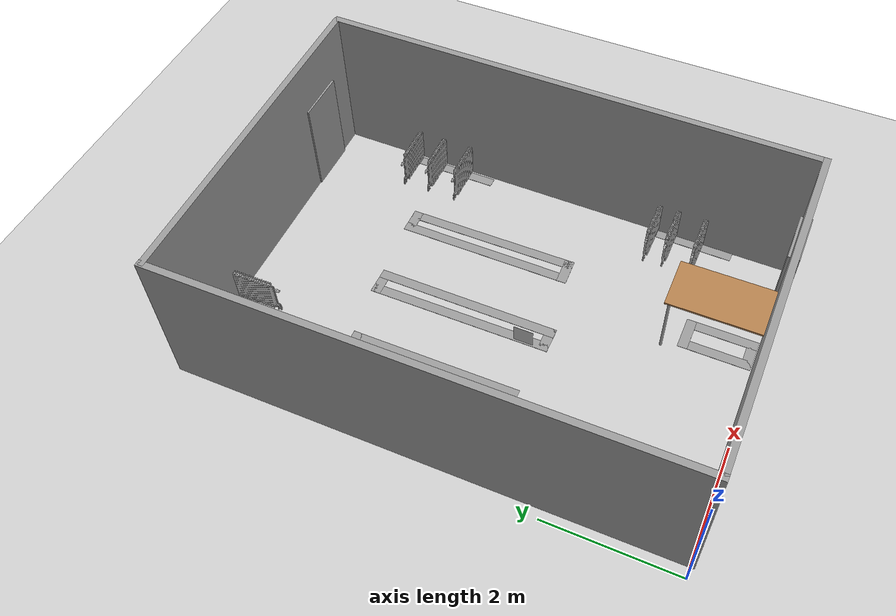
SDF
<sdf version="1.7">
 <world name="default">
  <light name="sun" type="directional">
   <pose>0 0 10 0 -0 0</pose>
   <diffuse>0.8 0.8 0.8 1</diffuse>
   <specular>0.2 0.2 0.2 1</specular>
   <attenuation>
    <range>1000</range>
    <constant>0.9</constant>
    <linear>0.01</linear>
    <quadratic>0.001</quadratic>
   </attenuation>
   <direction>-0.5 0.1 -0.9</direction>
   <spot><inner_angle>0</inner_angle><outer_angle>0</outer_angle><falloff>0</falloff></spot>
  </light>
  <model name="ground_plane">
   <static>1</static>
   <link name="link">
    <collision name="collision">
     <geometry><plane><normal>0 0 1</normal><size>100 100</size></plane></geometry>
     <surface>
      <contact><collide_bitmask>65535</collide_bitmask></contact>
      <friction><ode><mu>100</mu><mu2>50</mu2></ode></friction>
     </surface>
    </collision>
    <visual name="visual">
     <cast_shadows>0</cast_shadows>
     <geometry><plane><normal>0 0 1</normal><size>100 100</size></plane></geometry>
     <material>
      <script><uri>file://media/materials/scripts/gazebo.material</uri><name>Gazebo/Grey</name></script>
     </material>
    </visual>
   </link>
  </model>
  <gravity>0 0 -9.8</gravity>
  <magnetic_field>6e-06 2.3e-05 -4.2e-05</magnetic_field>
  <atmosphere type="adiabatic"/>
  <physics type="ode">
   <max_step_size>0.001</max_step_size>
   <real_time_factor>1</real_time_factor>
   <real_time_update_rate>1000</real_time_update_rate>
  </physics>
  <scene><ambient>0.4 0.4 0.4 1</ambient><background>0.7 0.7 0.7 1</background><shadows>1</shadows></scene>
  <spherical_coordinates>
   <surface_model>EARTH_WGS84</surface_model>
   <latitude_deg>0</latitude_deg>
   <longitude_deg>0</longitude_deg>
   <elevation>0</elevation>
   <heading_deg>0</heading_deg>
  </spherical_coordinates>
  <model name="csl_lab_accurate">
   <pose>2.7656 3.78855 -0.103472 0 -0 0</pose>
   <link name="Wall_1">
    <collision name="Wall_1_Collision">
     <geometry><box><size>5.25533 0.1 2.5</size></box></geometry>
     <pose>0 0 1.25 0 -0 0</pose>
    </collision>
    <visual name="Wall_1_Visual">
     <pose>0 0 1.25 0 -0 0</pose>
     <geometry><box><size>5.25533 0.1 2.5</size></box></geometry>
     <material>
      <script><uri>file://media/materials/scripts/gazebo.material</uri><name>Gazebo/Grey</name></script>
      <ambient>1 1 1 1</ambient>
     </material>
     <meta><layer>0</layer></meta>
    </visual>
    <pose>-0.003381 3.76591 0 0 -0 0.010281</pose>
   </link>
   <link name="Wall_10">
    <collision name="Wall_10_Collision">
     <geometry><box><size>0.412933 0.15 0.1</size></box></geometry>
     <pose>0 0 0.05 0 -0 0</pose>
    </collision>
    <visual name="Wall_10_Visual">
     <pose>0 0 0.05 0 -0 0</pose>
     <geometry><box><size>0.412933 0.15 0.1</size></box></geometry>
     <material>
      <script><uri>file://media/materials/scripts/gazebo.material</uri><name>Gazebo/Grey</name></script>
      <ambient>1 1 1 1</ambient>
     </material>
     <meta><layer>0</layer></meta>
    </visual>
    <pose>-1.28488 1.73341 0 0 -0 3.14159</pose>
   </link>
   <link name="Wall_12">
    <collision name="Wall_12_Collision">
     <geometry><box><size>2.86102 0.15 0.1</size></box></geometry>
     <pose>0 0 0.05 0 -0 0</pose>
    </collision>
    <visual name="Wall_12_Visual">
     <pose>0 0 0.05 0 -0 0</pose>
     <geometry><box><size>2.86102 0.15 0.1</size></box></geometry>
     <material>
      <script><uri>file://media/materials/scripts/gazebo.material</uri><name>Gazebo/Grey</name></script>
      <ambient>1 1 1 1</ambient>
     </material>
     <meta><layer>0</layer></meta>
    </visual>
    <pose>-0.235881 0.50091 0 0 -0 -1.56416</pose>
   </link>
   <link name="Wall_13">
    <collision name="Wall_13_Collision">
     <geometry><box><size>0.412351 0.15 0.1</size></box></geometry>
     <pose>0 0 0.05 0 -0 0</pose>
    </collision>
    <visual name="Wall_13_Visual">
     <pose>0 0 0.05 0 -0 0</pose>
     <geometry><box><size>0.412351 0.15 0.1</size></box></geometry>
     <material>
      <script><uri>file://media/materials/scripts/gazebo.material</uri><name>Gazebo/Grey</name></script>
      <ambient>1 1 1 1</ambient>
     </material>
     <meta><layer>0</layer></meta>
    </visual>
    <pose>-0.095881 -0.85459 0 0 -0 0</pose>
   </link>
   <link name="Wall_14">
    <collision name="Wall_14_Collision">
     <geometry><box><size>2.86096 0.15 0.1</size></box></geometry>
     <pose>0 0 0.05 0 -0 0</pose>
    </collision>
    <visual name="Wall_14_Visual">
     <pose>0 0 0.05 0 -0 0</pose>
     <geometry><box><size>2.86096 0.15 0.1</size></box></geometry>
     <material>
      <script><uri>file://media/materials/scripts/gazebo.material</uri><name>Gazebo/Grey</name></script>
      <ambient>1 1 1 1</ambient>
     </material>
     <meta><layer>0</layer></meta>
    </visual>
    <pose>0.035119 0.50091 0 0 -0 1.5708</pose>
   </link>
   <link name="Wall_15">
    <collision name="Wall_15_Collision">
     <geometry><box><size>0.430387 0.15 0.1</size></box></geometry>
     <pose>0 0 0.05 0 -0 0</pose>
    </collision>
    <visual name="Wall_15_Visual">
     <pose>0 0 0.05 0 -0 0</pose>
     <geometry><box><size>0.430387 0.15 0.1</size></box></geometry>
     <material>
      <script><uri>file://media/materials/scripts/gazebo.material</uri><name>Gazebo/Grey</name></script>
      <ambient>1 1 1 1</ambient>
     </material>
     <meta><layer>0</layer></meta>
    </visual>
    <pose>-0.104881 1.85641 0 0 -0 3.14159</pose>
   </link>
   <link name="Wall_17">
    <collision name="Wall_17_Collision">
     <geometry><box><size>2.75 0.15 0.1</size></box></geometry>
     <pose>0 0 0.05 0 -0 0</pose>
    </collision>
    <visual name="Wall_17_Visual">
     <pose>0 0 0.05 0 -0 0</pose>
     <geometry><box><size>2.75 0.15 0.1</size></box></geometry>
     <material>
      <script><uri>file://media/materials/scripts/gazebo.material</uri><name>Gazebo/Grey</name></script>
      <ambient>1 1 1 1</ambient>
     </material>
     <meta><layer>0</layer></meta>
    </visual>
    <pose>1.05012 0.64341 0 0 -0 -1.5708</pose>
   </link>
   <link name="Wall_18">
    <collision name="Wall_18_Collision">
     <geometry><box><size>0.430076 0.15 0.1</size></box></geometry>
     <pose>0 0 0.05 0 -0 0</pose>
    </collision>
    <visual name="Wall_18_Visual">
     <pose>0 0 0.05 0 -0 0</pose>
     <geometry><box><size>0.430076 0.15 0.1</size></box></geometry>
     <material>
      <script><uri>file://media/materials/scripts/gazebo.material</uri><name>Gazebo/Grey</name></script>
      <ambient>1 1 1 1</ambient>
     </material>
     <meta><layer>0</layer></meta>
    </visual>
    <pose>1.18962 -0.65059 0 0 -0 0.042984</pose>
   </link>
   <link name="Wall_19">
    <collision name="Wall_19_Collision">
     <geometry><box><size>2.73859 0.15 0.1</size></box></geometry>
     <pose>0 0 0.05 0 -0 0</pose>
    </collision>
    <visual name="Wall_19_Visual">
     <pose>0 0 0.05 0 -0 0</pose>
     <geometry><box><size>2.73859 0.15 0.1</size></box></geometry>
     <material>
      <script><uri>file://media/materials/scripts/gazebo.material</uri><name>Gazebo/Grey</name></script>
      <ambient>1 1 1 1</ambient>
     </material>
     <meta><layer>0</layer></meta>
    </visual>
    <pose>1.32062 0.64941 0 0 -0 1.57736</pose>
   </link>
   <link name="Wall_20">
    <collision name="Wall_20_Collision">
     <geometry><box><size>0.395485 0.15 0.1</size></box></geometry>
     <pose>0 0 0.05 0 -0 0</pose>
    </collision>
    <visual name="Wall_20_Visual">
     <pose>0 0 0.05 0 -0 0</pose>
     <geometry><box><size>0.395485 0.15 0.1</size></box></geometry>
     <material>
      <script><uri>file://media/materials/scripts/gazebo.material</uri><name>Gazebo/Grey</name></script>
      <ambient>1 1 1 1</ambient>
     </material>
     <meta><layer>0</layer></meta>
    </visual>
    <pose>1.18962 1.94341 0 0 -0 3.14159</pose>
   </link>
   <link name="Wall_22">
    <collision name="Wall_22_Collision">
     <geometry><box><size>1.1563 0.15 0.1</size></box></geometry>
     <pose>0 0 0.05 0 -0 0</pose>
    </collision>
    <visual name="Wall_22_Visual">
     <pose>0 0 0.05 0 -0 0</pose>
     <geometry><box><size>1.1563 0.15 0.1</size></box></geometry>
     <material>
      <script><uri>file://media/materials/scripts/gazebo.material</uri><name>Gazebo/Grey</name></script>
      <ambient>1 1 1 1</ambient>
     </material>
     <meta><layer>0</layer></meta>
    </visual>
    <pose>-1.38938 3.45541 0 0 -0 0.005958</pose>
   </link>
   <link name="Wall_23">
    <collision name="Wall_23_Collision">
     <geometry><box><size>0.275786 0.15 0.1</size></box></geometry>
     <pose>0 0 0.05 0 -0 0</pose>
    </collision>
    <visual name="Wall_23_Visual">
     <pose>0 0 0.05 0 -0 0</pose>
     <geometry><box><size>0.275786 0.15 0.1</size></box></geometry>
     <material>
      <script><uri>file://media/materials/scripts/gazebo.material</uri><name>Gazebo/Grey</name></script>
      <ambient>1 1 1 1</ambient>
     </material>
     <meta><layer>0</layer></meta>
    </visual>
    <pose>-0.888881 3.52141 0 0 -0 1.61838</pose>
   </link>
   <link name="Wall_24">
    <collision name="Wall_24_Collision">
     <geometry><box><size>1.15057 0.15 0.1</size></box></geometry>
     <pose>0 0 0.05 0 -0 0</pose>
    </collision>
    <visual name="Wall_24_Visual">
     <pose>0 0 0.05 0 -0 0</pose>
     <geometry><box><size>1.15057 0.15 0.1</size></box></geometry>
     <material>
      <script><uri>file://media/materials/scripts/gazebo.material</uri><name>Gazebo/Grey</name></script>
      <ambient>1 1 1 1</ambient>
     </material>
     <meta><layer>0</layer></meta>
    </visual>
    <pose>-1.39238 3.58441 0 0 -0 3.14159</pose>
   </link>
   <link name="Wall_28">
    <collision name="Wall_28_Collision">
     <geometry><box><size>0.480435 0.15 0.7</size></box></geometry>
     <pose>0 0 0.35 0 -0 0</pose>
    </collision>
    <visual name="Wall_28_Visual">
     <pose>0 0 0.35 0 -0 0</pose>
     <geometry><box><size>0.480435 0.15 0.7</size></box></geometry>
     <material>
      <script><uri>file://media/materials/scripts/gazebo.material</uri><name>Gazebo/Grey</name></script>
      <ambient>1 1 1 1</ambient>
     </material>
     <meta><layer>0</layer></meta>
    </visual>
    <pose>-2.39988 3.61541 0 0 -0 0</pose>
   </link>
   <link name="Wall_3">
    <collision name="Wall_3_Collision">
     <geometry><box><size>7.67346 0.1 2.5</size></box></geometry>
     <pose>0 0 1.25 0 -0 0</pose>
    </collision>
    <visual name="Wall_3_Visual">
     <pose>0 0 1.25 0 -0 0</pose>
     <geometry><box><size>7.67346 0.1 2.5</size></box></geometry>
     <material>
      <script><uri>file://media/materials/scripts/gazebo.material</uri><name>Gazebo/Grey</name></script>
      <ambient>1 1 1 1</ambient>
     </material>
     <meta><layer>0</layer></meta>
    </visual>
    <pose>2.59762 -0.00609 0 0 -0 -1.57304</pose>
   </link>
   <link name="Wall_30">
    <collision name="Wall_30_Collision">
     <geometry><box><size>0.426 0.15 0.7</size></box></geometry>
     <pose>0 0 0.35 0 -0 0</pose>
    </collision>
    <visual name="Wall_30_Visual">
     <pose>0 0 0.35 0 -0 0</pose>
     <geometry><box><size>0.426 0.15 0.7</size></box></geometry>
     <material>
      <script><uri>file://media/materials/scripts/gazebo.material</uri><name>Gazebo/Grey</name></script>
      <ambient>1 1 1 1</ambient>
     </material>
     <meta><layer>0</layer></meta>
    </visual>
    <pose>-2.46488 1.02241 0 0 -0 -1.5708</pose>
   </link>
   <link name="Wall_34">
    <collision name="Wall_34_Collision">
     <geometry><box><size>0.533753 0.15 0.7</size></box></geometry>
     <pose>0 0 0.35 0 -0 0</pose>
    </collision>
    <visual name="Wall_34_Visual">
     <pose>0 0 0.35 0 -0 0</pose>
     <geometry><box><size>0.533753 0.15 0.7</size></box></geometry>
     <material>
      <script><uri>file://media/materials/scripts/gazebo.material</uri><name>Gazebo/Grey</name></script>
      <ambient>1 1 1 1</ambient>
     </material>
     <meta><layer>0</layer></meta>
    </visual>
    <pose>-2.44688 -0.63359 0 0 -0 -1.5708</pose>
   </link>
   <link name="Wall_36">
    <collision name="Wall_36_Collision">
     <geometry><box><size>0.771716 0.15 0.7</size></box></geometry>
     <pose>0 0 0.35 0 -0 0</pose>
    </collision>
    <visual name="Wall_36_Visual">
     <pose>0 0 0.35 0 -0 0</pose>
     <geometry><box><size>0.771716 0.15 0.7</size></box></geometry>
     <material>
      <script><uri>file://media/materials/scripts/gazebo.material</uri><name>Gazebo/Grey</name></script>
      <ambient>1 1 1 1</ambient>
     </material>
     <meta><layer>0</layer></meta>
    </visual>
    <pose>-2.44038 -1.65159 0 0 -0 -1.5499</pose>
   </link>
   <link name="Wall_4">
    <collision name="Wall_4_Collision">
     <geometry><box><size>5.24234 0.1 2.5</size></box></geometry>
     <pose>0 0 1.25 0 -0 0</pose>
    </collision>
    <visual name="Wall_4_Visual">
     <pose>0 0 1.25 0 -0 0</pose>
     <geometry><box><size>5.24234 0.1 2.5</size></box></geometry>
     <material>
      <script><uri>file://media/materials/scripts/gazebo.material</uri><name>Gazebo/Grey</name></script>
      <ambient>1 1 1 1</ambient>
     </material>
     <meta><layer>0</layer></meta>
    </visual>
    <pose>0.018119 -3.79259 0 0 -0 3.14159</pose>
   </link>
   <link name="Wall_43">
    <collision name="Wall_43_Collision">
     <geometry><box><size>0.499 0.2 0.7</size></box></geometry>
     <pose>0 0 0.35 0 -0 0</pose>
    </collision>
    <visual name="Wall_43_Visual">
     <pose>0 0 0.35 0 -0 0</pose>
     <geometry><box><size>0.499 0.2 0.7</size></box></geometry>
     <material>
      <script><uri>file://media/materials/scripts/gazebo.material</uri><name>Gazebo/Grey</name></script>
      <ambient>1 1 1 1</ambient>
     </material>
     <meta><layer>0</layer></meta>
    </visual>
    <pose>-2.40788 -3.58509 0 0 -0 1.5708</pose>
   </link>
   <link name="Wall_45">
    <collision name="Wall_45_Collision">
     <geometry><box><size>1.093 0.15 0.1</size></box></geometry>
     <pose>0 0 0.05 0 -0 0</pose>
    </collision>
    <visual name="Wall_45_Visual">
     <pose>0 0 0.05 0 -0 0</pose>
     <geometry><box><size>1.093 0.15 0.1</size></box></geometry>
     <material>
      <script><uri>file://media/materials/scripts/gazebo.material</uri><name>Gazebo/Grey</name></script>
      <ambient>1 1 1 1</ambient>
     </material>
     <meta><layer>0</layer></meta>
    </visual>
    <pose>0.628119 -3.18209 0 0 -0 1.5708</pose>
   </link>
   <link name="Wall_46">
    <collision name="Wall_46_Collision">
     <geometry><box><size>0.518 0.15 0.1</size></box></geometry>
     <pose>0 0 0.05 0 -0 0</pose>
    </collision>
    <visual name="Wall_46_Visual">
     <pose>0 0 0.05 0 -0 0</pose>
     <geometry><box><size>0.518 0.15 0.1</size></box></geometry>
     <material>
      <script><uri>file://media/materials/scripts/gazebo.material</uri><name>Gazebo/Grey</name></script>
      <ambient>1 1 1 1</ambient>
     </material>
     <meta><layer>0</layer></meta>
    </visual>
    <pose>0.812119 -2.71059 0 0 -0 0</pose>
   </link>
   <link name="Wall_47">
    <collision name="Wall_47_Collision">
     <geometry><box><size>1.093 0.15 0.1</size></box></geometry>
     <pose>0 0 0.05 0 -0 0</pose>
    </collision>
    <visual name="Wall_47_Visual">
     <pose>0 0 0.05 0 -0 0</pose>
     <geometry><box><size>1.093 0.15 0.1</size></box></geometry>
     <material>
      <script><uri>file://media/materials/scripts/gazebo.material</uri><name>Gazebo/Grey</name></script>
      <ambient>1 1 1 1</ambient>
     </material>
     <meta><layer>0</layer></meta>
    </visual>
    <pose>0.996119 -3.18209 0 0 -0 -1.5708</pose>
   </link>
   <link name="Wall_48">
    <collision name="Wall_48_Collision">
     <geometry><box><size>0.4835 0.15 0.1</size></box></geometry>
     <pose>0 0 0.05 0 -0 0</pose>
    </collision>
    <visual name="Wall_48_Visual">
     <pose>0 0 0.05 0 -0 0</pose>
     <geometry><box><size>0.4835 0.15 0.1</size></box></geometry>
     <material>
      <script><uri>file://media/materials/scripts/gazebo.material</uri><name>Gazebo/Grey</name></script>
      <ambient>1 1 1 1</ambient>
     </material>
     <meta><layer>0</layer></meta>
    </visual>
    <pose>0.829119 -3.65359 0 0 -0 3.14159</pose>
   </link>
   <link name="Wall_5">
    <collision name="Wall_5_Collision">
     <geometry><box><size>7.63796 0.1 2.5</size></box></geometry>
     <pose>0 0 1.25 0 -0 0</pose>
    </collision>
    <visual name="Wall_5_Visual">
     <pose>0 0 1.25 0 -0 0</pose>
     <geometry><box><size>7.63796 0.1 2.5</size></box></geometry>
     <material>
      <script><uri>file://media/materials/scripts/gazebo.material</uri><name>Gazebo/Grey</name></script>
      <ambient>1 1 1 1</ambient>
     </material>
     <meta><layer>0</layer></meta>
    </visual>
    <pose>-2.57938 -0.02359 0 0 -0 1.57783</pose>
   </link>
   <link name="Wall_51">
    <collision name="Wall_51_Collision">
     <geometry><box><size>1.28873 0.15 0.1</size></box></geometry>
     <pose>0 0 0.05 0 -0 0</pose>
    </collision>
    <visual name="Wall_51_Visual">
     <pose>0 0 0.05 0 -0 0</pose>
     <geometry><box><size>1.28873 0.15 0.1</size></box></geometry>
     <material>
      <script><uri>file://media/materials/scripts/gazebo.material</uri><name>Gazebo/Grey</name></script>
      <ambient>1 1 1 1</ambient>
     </material>
     <meta><layer>0</layer></meta>
    </visual>
    <pose>2.44412 1.76341 0 0 -0 -1.5708</pose>
   </link>
   <link name="Wall_53">
    <collision name="Wall_53_Collision">
     <geometry><box><size>1.23106 0.15 0.1</size></box></geometry>
     <pose>0 0 0.05 0 -0 0</pose>
    </collision>
    <visual name="Wall_53_Visual">
     <pose>0 0 0.05 0 -0 0</pose>
     <geometry><box><size>1.23106 0.15 0.1</size></box></geometry>
     <material>
      <script><uri>file://media/materials/scripts/gazebo.material</uri><name>Gazebo/Grey</name></script>
      <ambient>1 1 1 1</ambient>
     </material>
     <meta><layer>0</layer></meta>
    </visual>
    <pose>2.47262 -2.30209 0 0 -0 -1.58097</pose>
   </link>
   <link name="Wall_7">
    <collision name="Wall_7_Collision">
     <geometry><box><size>2.65114 0.15 0.1</size></box></geometry>
     <pose>0 0 0.05 0 -0 0</pose>
    </collision>
    <visual name="Wall_7_Visual">
     <pose>0 0 0.05 0 -0 0</pose>
     <geometry><box><size>2.65114 0.15 0.1</size></box></geometry>
     <material>
      <script><uri>file://media/materials/scripts/gazebo.material</uri><name>Gazebo/Grey</name></script>
      <ambient>1 1 1 1</ambient>
     </material>
     <meta><layer>0</layer></meta>
    </visual>
    <pose>-1.42488 0.50091 0 0 -0 -1.5636</pose>
   </link>
   <link name="Wall_8">
    <collision name="Wall_8_Collision">
     <geometry><box><size>0.429841 0.15 0.1</size></box></geometry>
     <pose>0 0 0.05 0 -0 0</pose>
    </collision>
    <visual name="Wall_8_Visual">
     <pose>0 0 0.05 0 -0 0</pose>
     <geometry><box><size>0.429841 0.15 0.1</size></box></geometry>
     <material>
      <script><uri>file://media/materials/scripts/gazebo.material</uri><name>Gazebo/Grey</name></script>
      <ambient>1 1 1 1</ambient>
     </material>
     <meta><layer>0</layer></meta>
    </visual>
    <pose>-1.27638 -0.74959 0 0 -0 0</pose>
   </link>
   <link name="Wall_9">
    <collision name="Wall_9_Collision">
     <geometry><box><size>2.63359 0.15 0.1</size></box></geometry>
     <pose>0 0 0.05 0 -0 0</pose>
    </collision>
    <visual name="Wall_9_Visual">
     <pose>0 0 0.05 0 -0 0</pose>
     <geometry><box><size>2.63359 0.15 0.1</size></box></geometry>
     <material>
      <script><uri>file://media/materials/scripts/gazebo.material</uri><name>Gazebo/Grey</name></script>
      <ambient>1 1 1 1</ambient>
     </material>
     <meta><layer>0</layer></meta>
    </visual>
    <pose>-1.14538 0.49191 0 0 -0 1.57764</pose>
   </link>
   <static>1</static>
  </model>
  <model name="table">
   <static>1</static>
   <link name="link">
    <collision name="surface">
     <pose>0 0 1 0 -0 0</pose>
     <geometry><box><size>1.5 0.8 0.03</size></box></geometry>
     <surface><friction><ode><mu>0.6</mu><mu2>0.6</mu2></ode></friction></surface>
    </collision>
    <visual name="visual1">
     <pose>0 0 1 0 -0 0</pose>
     <geometry><box><size>1.5 0.8 0.03</size></box></geometry>
     <material>
      <script><uri>file://media/materials/scripts/gazebo.material</uri><name>Gazebo/Wood</name></script>
     </material>
    </visual>
    <collision name="front_left_leg">
     <pose>0.68 0.38 0.5 0 -0 0</pose>
     <geometry><cylinder><radius>0.02</radius><length>1</length></cylinder></geometry>
    </collision>
    <visual name="front_left_leg">
     <pose>0.68 0.38 0.5 0 -0 0</pose>
     <geometry><cylinder><radius>0.02</radius><length>1</length></cylinder></geometry>
     <material>
      <script><uri>file://media/materials/scripts/gazebo.material</uri><name>Gazebo/Grey</name></script>
     </material>
    </visual>
    <collision name="front_right_leg">
     <pose>0.68 -0.38 0.5 0 -0 0</pose>
     <geometry><cylinder><radius>0.02</radius><length>1</length></cylinder></geometry>
    </collision>
    <visual name="front_right_leg">
     <pose>0.68 -0.38 0.5 0 -0 0</pose>
     <geometry><cylinder><radius>0.02</radius><length>1</length></cylinder></geometry>
     <material>
      <script><uri>file://media/materials/scripts/gazebo.material</uri><name>Gazebo/Grey</name></script>
     </material>
    </visual>
    <collision name="back_right_leg">
     <pose>-0.68 -0.38 0.5 0 -0 0</pose>
     <geometry><cylinder><radius>0.02</radius><length>1</length></cylinder></geometry>
    </collision>
    <visual name="back_right_leg">
     <pose>-0.68 -0.38 0.5 0 -0 0</pose>
     <geometry><cylinder><radius>0.02</radius><length>1</length></cylinder></geometry>
     <material>
      <script><uri>file://media/materials/scripts/gazebo.material</uri><name>Gazebo/Grey</name></script>
     </material>
    </visual>
    <collision name="back_left_leg">
     <pose>-0.68 0.38 0.5 0 -0 0</pose>
     <geometry><cylinder><radius>0.02</radius><length>1</length></cylinder></geometry>
    </collision>
    <visual name="back_left_leg">
     <pose>-0.68 0.38 0.5 0 -0 0</pose>
     <geometry><cylinder><radius>0.02</radius><length>1</length></cylinder></geometry>
     <material>
      <script><uri>file://media/materials/scripts/gazebo.material</uri><name>Gazebo/Grey</name></script>
     </material>
    </visual>
   </link>
   <pose>3.62826 0.704413 0 0 0 -1.56489</pose>
  </model>
  <model name="CastIronRadiator">
   <link name="link">
    <inertial>
     <inertia>
      <ixx>8.794</ixx>
      <ixy>-6.04e-06</ixy>
      <ixz>-0.00027907</ixz>
      <iyy>6.32668</iyy>
      <iyz>-3.26e-06</iyz>
      <izz>3.17141</izz>
     </inertia>
     <mass>145.789</mass>
    </inertial>
    <visual name="radiator_visual">
     <geometry>
      <mesh>
       <uri>https://fuel.ignitionrobotics.org/1.0/alexssom/models/cast iron radiator/1/files/meshes/radiator.dae</uri>
      </mesh>
     </geometry>
     <plugin name="ignition::gazebo::systems::Thermal" filename="ignition-gazebo-thermal-system">
      <temperature>325.0</temperature>
     </plugin>
     <material><shader type="pixel"/></material>
    </visual>
    <collision name="radiator_collision">
     <geometry>
      <mesh>
       <uri>/home/johnerzz/.ignition/fuel/fuel.ignitionrobotics.org/alexssom/models/cast iron radiator/1/meshes/collision.stl</uri>
       <scale>1 1 1</scale>
      </mesh>
     </geometry>
     <surface>
      <friction>
       <ode><mu>1</mu><mu2>1</mu2><fdir1>0 0 0</fdir1><slip1>0</slip1><slip2>0</slip2></ode>
       <torsional>
        <coefficient>1</coefficient>
        <patch_radius>0</patch_radius>
        <surface_radius>0</surface_radius>
        <use_patch_radius>1</use_patch_radius>
        <ode><slip>0</slip></ode>
       </torsional>
      </friction>
      <bounce><restitution_coefficient>0</restitution_coefficient><threshold>1e+06</threshold></bounce>
      <contact>
       <collide_without_contact>0</collide_without_contact>
       <collide_without_contact_bitmask>1</collide_without_contact_bitmask>
       <collide_bitmask>1</collide_bitmask>
       <ode>
        <soft_cfm>0</soft_cfm>
        <soft_erp>0.2</soft_erp>
        <kp>1e+13</kp>
        <kd>1</kd>
        <max_vel>0.01</max_vel>
        <min_depth>0</min_depth>
       </ode>
       <bullet>
        <split_impulse>1</split_impulse>
        <split_impulse_penetration_threshold>-0.01</split_impulse_penetration_threshold>
        <soft_cfm>0</soft_cfm>
        <soft_erp>0.2</soft_erp>
        <kp>1e+13</kp>
        <kd>1</kd>
       </bullet>
      </contact>
     </surface>
    </collision>
   </link>
   <static>1</static>
   <pose>5.10388 6.22706 0 0 -0 0</pose>
  </model>
  <model name="CastIronRadiator_0">
   <link name="link">
    <inertial>
     <inertia>
      <ixx>8.794</ixx>
      <ixy>-6.04e-06</ixy>
      <ixz>-0.00027907</ixz>
      <iyy>6.32668</iyy>
      <iyz>-3.26e-06</iyz>
      <izz>3.17141</izz>
     </inertia>
     <mass>145.789</mass>
    </inertial>
    <visual name="radiator_visual">
     <geometry>
      <mesh>
       <uri>https://fuel.ignitionrobotics.org/1.0/alexssom/models/cast iron radiator/1/files/meshes/radiator.dae</uri>
      </mesh>
     </geometry>
     <plugin name="ignition::gazebo::systems::Thermal" filename="ignition-gazebo-thermal-system">
      <temperature>325.0</temperature>
     </plugin>
     <material><shader type="pixel"/></material>
    </visual>
    <collision name="radiator_collision">
     <geometry>
      <mesh>
       <uri>/home/johnerzz/.ignition/fuel/fuel.ignitionrobotics.org/alexssom/models/cast iron radiator/1/meshes/collision.stl</uri>
       <scale>1 1 1</scale>
      </mesh>
     </geometry>
     <surface>
      <friction>
       <ode><mu>1</mu><mu2>1</mu2><fdir1>0 0 0</fdir1><slip1>0</slip1><slip2>0</slip2></ode>
       <torsional>
        <coefficient>1</coefficient>
        <patch_radius>0</patch_radius>
        <surface_radius>0</surface_radius>
        <use_patch_radius>1</use_patch_radius>
        <ode><slip>0</slip></ode>
       </torsional>
      </friction>
      <bounce><restitution_coefficient>0</restitution_coefficient><threshold>1e+06</threshold></bounce>
      <contact>
       <collide_without_contact>0</collide_without_contact>
       <collide_without_contact_bitmask>1</collide_without_contact_bitmask>
       <collide_bitmask>1</collide_bitmask>
       <ode>
        <soft_cfm>0</soft_cfm>
        <soft_erp>0.2</soft_erp>
        <kp>1e+13</kp>
        <kd>1</kd>
        <max_vel>0.01</max_vel>
        <min_depth>0</min_depth>
       </ode>
       <bullet>
        <split_impulse>1</split_impulse>
        <split_impulse_penetration_threshold>-0.01</split_impulse_penetration_threshold>
        <soft_cfm>0</soft_cfm>
        <soft_erp>0.2</soft_erp>
        <kp>1e+13</kp>
        <kd>1</kd>
       </bullet>
      </contact>
     </surface>
    </collision>
   </link>
   <static>1</static>
   <pose>5.10751 5.80395 0 0 -0 0</pose>
  </model>
  <model name="CastIronRadiator_1">
   <link name="link">
    <inertial>
     <inertia>
      <ixx>8.794</ixx>
      <ixy>-6.04e-06</ixy>
      <ixz>-0.00027907</ixz>
      <iyy>6.32668</iyy>
      <iyz>-3.26e-06</iyz>
      <izz>3.17141</izz>
     </inertia>
     <mass>145.789</mass>
    </inertial>
    <visual name="radiator_visual">
     <geometry>
      <mesh>
       <uri>https://fuel.ignitionrobotics.org/1.0/alexssom/models/cast iron radiator/1/files/meshes/radiator.dae</uri>
      </mesh>
     </geometry>
     <plugin name="ignition::gazebo::systems::Thermal" filename="ignition-gazebo-thermal-system">
      <temperature>325.0</temperature>
     </plugin>
     <material><shader type="pixel"/></material>
    </visual>
    <collision name="radiator_collision">
     <geometry>
      <mesh>
       <uri>/home/johnerzz/.ignition/fuel/fuel.ignitionrobotics.org/alexssom/models/cast iron radiator/1/meshes/collision.stl</uri>
       <scale>1 1 1</scale>
      </mesh>
     </geometry>
     <surface>
      <friction>
       <ode><mu>1</mu><mu2>1</mu2><fdir1>0 0 0</fdir1><slip1>0</slip1><slip2>0</slip2></ode>
       <torsional>
        <coefficient>1</coefficient>
        <patch_radius>0</patch_radius>
        <surface_radius>0</surface_radius>
        <use_patch_radius>1</use_patch_radius>
        <ode><slip>0</slip></ode>
       </torsional>
      </friction>
      <bounce><restitution_coefficient>0</restitution_coefficient><threshold>1e+06</threshold></bounce>
      <contact>
       <collide_without_contact>0</collide_without_contact>
       <collide_without_contact_bitmask>1</collide_without_contact_bitmask>
       <collide_bitmask>1</collide_bitmask>
       <ode>
        <soft_cfm>0</soft_cfm>
        <soft_erp>0.2</soft_erp>
        <kp>1e+13</kp>
        <kd>1</kd>
        <max_vel>0.01</max_vel>
        <min_depth>0</min_depth>
       </ode>
       <bullet>
        <split_impulse>1</split_impulse>
        <split_impulse_penetration_threshold>-0.01</split_impulse_penetration_threshold>
        <soft_cfm>0</soft_cfm>
        <soft_erp>0.2</soft_erp>
        <kp>1e+13</kp>
        <kd>1</kd>
       </bullet>
      </contact>
     </surface>
    </collision>
   </link>
   <static>1</static>
   <pose>5.1164 1.3807 0 0 -0 0</pose>
  </model>
  <model name="CastIronRadiator_1_clone">
   <link name="link">
    <inertial>
     <inertia>
      <ixx>8.794</ixx>
      <ixy>-6.04e-06</ixy>
      <ixz>-0.00027907</ixz>
      <iyy>6.32668</iyy>
      <iyz>-3.26e-06</iyz>
      <izz>3.17141</izz>
     </inertia>
     <mass>145.789</mass>
    </inertial>
    <visual name="radiator_visual">
     <geometry>
      <mesh>
       <uri>https://fuel.ignitionrobotics.org/1.0/alexssom/models/cast iron radiator/1/files/meshes/radiator.dae</uri>
      </mesh>
     </geometry>
     <plugin name="ignition::gazebo::systems::Thermal" filename="ignition-gazebo-thermal-system">
      <temperature>325.0</temperature>
     </plugin>
     <material><shader type="pixel"/></material>
    </visual>
    <collision name="radiator_collision">
     <geometry>
      <mesh>
       <uri>/home/johnerzz/.ignition/fuel/fuel.ignitionrobotics.org/alexssom/models/cast iron radiator/1/meshes/collision.stl</uri>
       <scale>1 1 1</scale>
      </mesh>
     </geometry>
     <surface>
      <friction>
       <ode><mu>1</mu><mu2>1</mu2><fdir1>0 0 0</fdir1><slip1>0</slip1><slip2>0</slip2></ode>
       <torsional>
        <coefficient>1</coefficient>
        <patch_radius>0</patch_radius>
        <surface_radius>0</surface_radius>
        <use_patch_radius>1</use_patch_radius>
        <ode><slip>0</slip></ode>
       </torsional>
      </friction>
      <bounce><restitution_coefficient>0</restitution_coefficient><threshold>1e+06</threshold></bounce>
      <contact>
       <collide_without_contact>0</collide_without_contact>
       <collide_without_contact_bitmask>1</collide_without_contact_bitmask>
       <collide_bitmask>1</collide_bitmask>
       <ode>
        <soft_cfm>0</soft_cfm>
        <soft_erp>0.2</soft_erp>
        <kp>1e+13</kp>
        <kd>1</kd>
        <max_vel>0.01</max_vel>
        <min_depth>0</min_depth>
       </ode>
       <bullet>
        <split_impulse>1</split_impulse>
        <split_impulse_penetration_threshold>-0.01</split_impulse_penetration_threshold>
        <soft_cfm>0</soft_cfm>
        <soft_erp>0.2</soft_erp>
        <kp>1e+13</kp>
        <kd>1</kd>
       </bullet>
      </contact>
     </surface>
    </collision>
   </link>
   <static>1</static>
   <pose>5.1225 1.8146 0 0 -0 0</pose>
  </model>
  <model name="CastIronRadiator_1_clone_0">
   <link name="link">
    <inertial>
     <inertia>
      <ixx>8.794</ixx>
      <ixy>-6.04e-06</ixy>
      <ixz>-0.00027907</ixz>
      <iyy>6.32668</iyy>
      <iyz>-3.26e-06</iyz>
      <izz>3.17141</izz>
     </inertia>
     <mass>145.789</mass>
    </inertial>
    <visual name="radiator_visual">
     <geometry>
      <mesh>
       <uri>https://fuel.ignitionrobotics.org/1.0/alexssom/models/cast iron radiator/1/files/meshes/radiator.dae</uri>
      </mesh>
     </geometry>
     <plugin name="ignition::gazebo::systems::Thermal" filename="ignition-gazebo-thermal-system">
      <temperature>325.0</temperature>
     </plugin>
     <material><shader type="pixel"/></material>
    </visual>
    <collision name="radiator_collision">
     <geometry>
      <mesh>
       <uri>/home/johnerzz/.ignition/fuel/fuel.ignitionrobotics.org/alexssom/models/cast iron radiator/1/meshes/collision.stl</uri>
       <scale>1 1 1</scale>
      </mesh>
     </geometry>
     <surface>
      <friction>
       <ode><mu>1</mu><mu2>1</mu2><fdir1>0 0 0</fdir1><slip1>0</slip1><slip2>0</slip2></ode>
       <torsional>
        <coefficient>1</coefficient>
        <patch_radius>0</patch_radius>
        <surface_radius>0</surface_radius>
        <use_patch_radius>1</use_patch_radius>
        <ode><slip>0</slip></ode>
       </torsional>
      </friction>
      <bounce><restitution_coefficient>0</restitution_coefficient><threshold>1e+06</threshold></bounce>
      <contact>
       <collide_without_contact>0</collide_without_contact>
       <collide_without_contact_bitmask>1</collide_without_contact_bitmask>
       <collide_bitmask>1</collide_bitmask>
       <ode>
        <soft_cfm>0</soft_cfm>
        <soft_erp>0.2</soft_erp>
        <kp>1e+13</kp>
        <kd>1</kd>
        <max_vel>0.01</max_vel>
        <min_depth>0</min_depth>
       </ode>
       <bullet>
        <split_impulse>1</split_impulse>
        <split_impulse_penetration_threshold>-0.01</split_impulse_penetration_threshold>
        <soft_cfm>0</soft_cfm>
        <soft_erp>0.2</soft_erp>
        <kp>1e+13</kp>
        <kd>1</kd>
       </bullet>
      </contact>
     </surface>
    </collision>
   </link>
   <static>1</static>
   <pose>5.11666 2.1137 0 0 -0 0</pose>
  </model>
  <model name="CastIronRadiator_1_clone_1">
   <link name="link">
    <inertial>
     <inertia>
      <ixx>8.794</ixx>
      <ixy>-6.04e-06</ixy>
      <ixz>-0.00027907</ixz>
      <iyy>6.32668</iyy>
      <iyz>-3.26e-06</iyz>
      <izz>3.17141</izz>
     </inertia>
     <mass>145.789</mass>
    </inertial>
    <visual name="radiator_visual">
     <geometry>
      <mesh>
       <uri>https://fuel.ignitionrobotics.org/1.0/alexssom/models/cast iron radiator/1/files/meshes/radiator.dae</uri>
      </mesh>
     </geometry>
     <plugin name="ignition::gazebo::systems::Thermal" filename="ignition-gazebo-thermal-system">
      <temperature>325.0</temperature>
     </plugin>
     <material><shader type="pixel"/></material>
    </visual>
    <collision name="radiator_collision">
     <geometry>
      <mesh>
       <uri>/home/johnerzz/.ignition/fuel/fuel.ignitionrobotics.org/alexssom/models/cast iron radiator/1/meshes/collision.stl</uri>
       <scale>1 1 1</scale>
      </mesh>
     </geometry>
     <surface>
      <friction>
       <ode><mu>1</mu><mu2>1</mu2><fdir1>0 0 0</fdir1><slip1>0</slip1><slip2>0</slip2></ode>
       <torsional>
        <coefficient>1</coefficient>
        <patch_radius>0</patch_radius>
        <surface_radius>0</surface_radius>
        <use_patch_radius>1</use_patch_radius>
        <ode><slip>0</slip></ode>
       </torsional>
      </friction>
      <bounce><restitution_coefficient>0</restitution_coefficient><threshold>1e+06</threshold></bounce>
      <contact>
       <collide_without_contact>0</collide_without_contact>
       <collide_without_contact_bitmask>1</collide_without_contact_bitmask>
       <collide_bitmask>1</collide_bitmask>
       <ode>
        <soft_cfm>0</soft_cfm>
        <soft_erp>0.2</soft_erp>
        <kp>1e+13</kp>
        <kd>1</kd>
        <max_vel>0.01</max_vel>
        <min_depth>0</min_depth>
       </ode>
       <bullet>
        <split_impulse>1</split_impulse>
        <split_impulse_penetration_threshold>-0.01</split_impulse_penetration_threshold>
        <soft_cfm>0</soft_cfm>
        <soft_erp>0.2</soft_erp>
        <kp>1e+13</kp>
        <kd>1</kd>
       </bullet>
      </contact>
     </surface>
    </collision>
   </link>
   <static>1</static>
   <pose>5.1049 5.33792 0 0 -0 0</pose>
  </model>
  <model name="CastIronRadiator_1_clone_2">
   <link name="link">
    <inertial>
     <inertia>
      <ixx>8.794</ixx>
      <ixy>-6.04e-06</ixy>
      <ixz>-0.00027907</ixz>
      <iyy>6.32668</iyy>
      <iyz>-3.26e-06</iyz>
      <izz>3.17141</izz>
     </inertia>
     <mass>145.789</mass>
    </inertial>
    <visual name="radiator_visual">
     <geometry>
      <mesh>
       <uri>https://fuel.ignitionrobotics.org/1.0/alexssom/models/cast iron radiator/1/files/meshes/radiator.dae</uri>
      </mesh>
     </geometry>
     <plugin name="ignition::gazebo::systems::Thermal" filename="ignition-gazebo-thermal-system">
      <temperature>325.0</temperature>
     </plugin>
     <material><shader type="pixel"/></material>
    </visual>
    <collision name="radiator_collision">
     <geometry>
      <mesh>
       <uri>/home/johnerzz/.ignition/fuel/fuel.ignitionrobotics.org/alexssom/models/cast iron radiator/1/meshes/collision.stl</uri>
       <scale>1 1 1</scale>
      </mesh>
     </geometry>
     <surface>
      <friction>
       <ode><mu>1</mu><mu2>1</mu2><fdir1>0 0 0</fdir1><slip1>0</slip1><slip2>0</slip2></ode>
       <torsional>
        <coefficient>1</coefficient>
        <patch_radius>0</patch_radius>
        <surface_radius>0</surface_radius>
        <use_patch_radius>1</use_patch_radius>
        <ode><slip>0</slip></ode>
       </torsional>
      </friction>
      <bounce><restitution_coefficient>0</restitution_coefficient><threshold>1e+06</threshold></bounce>
      <contact>
       <collide_without_contact>0</collide_without_contact>
       <collide_without_contact_bitmask>1</collide_without_contact_bitmask>
       <collide_bitmask>1</collide_bitmask>
       <ode>
        <soft_cfm>0</soft_cfm>
        <soft_erp>0.2</soft_erp>
        <kp>1e+13</kp>
        <kd>1</kd>
        <max_vel>0.01</max_vel>
        <min_depth>0</min_depth>
       </ode>
       <bullet>
        <split_impulse>1</split_impulse>
        <split_impulse_penetration_threshold>-0.01</split_impulse_penetration_threshold>
        <soft_cfm>0</soft_cfm>
        <soft_erp>0.2</soft_erp>
        <kp>1e+13</kp>
        <kd>1</kd>
       </bullet>
      </contact>
     </surface>
    </collision>
   </link>
   <static>1</static>
   <pose>0.705708 7.24846 0 0 -0 1.58731</pose>
  </model>
  <model name="CastIronRadiator_1_clone_2_clone">
   <link name="link">
    <inertial>
     <inertia>
      <ixx>8.794</ixx>
      <ixy>-6.04e-06</ixy>
      <ixz>-0.00027907</ixz>
      <iyy>6.32668</iyy>
      <iyz>-3.26e-06</iyz>
      <izz>3.17141</izz>
     </inertia>
     <mass>145.789</mass>
    </inertial>
    <visual name="radiator_visual">
     <geometry>
      <mesh>
       <uri>https://fuel.ignitionrobotics.org/1.0/alexssom/models/cast iron radiator/1/files/meshes/radiator.dae</uri>
      </mesh>
     </geometry>
     <plugin name="ignition::gazebo::systems::Thermal" filename="ignition-gazebo-thermal-system">
      <temperature>325.0</temperature>
     </plugin>
     <material><shader type="pixel"/></material>
    </visual>
    <collision name="radiator_collision">
     <geometry>
      <mesh>
       <uri>/home/johnerzz/.ignition/fuel/fuel.ignitionrobotics.org/alexssom/models/cast iron radiator/1/meshes/collision.stl</uri>
       <scale>1 1 1</scale>
      </mesh>
     </geometry>
     <surface>
      <friction>
       <ode><mu>1</mu><mu2>1</mu2><fdir1>0 0 0</fdir1><slip1>0</slip1><slip2>0</slip2></ode>
       <torsional>
        <coefficient>1</coefficient>
        <patch_radius>0</patch_radius>
        <surface_radius>0</surface_radius>
        <use_patch_radius>1</use_patch_radius>
        <ode><slip>0</slip></ode>
       </torsional>
      </friction>
      <bounce><restitution_coefficient>0</restitution_coefficient><threshold>1e+06</threshold></bounce>
      <contact>
       <collide_without_contact>0</collide_without_contact>
       <collide_without_contact_bitmask>1</collide_without_contact_bitmask>
       <collide_bitmask>1</collide_bitmask>
       <ode>
        <soft_cfm>0</soft_cfm>
        <soft_erp>0.2</soft_erp>
        <kp>1e+13</kp>
        <kd>1</kd>
        <max_vel>0.01</max_vel>
        <min_depth>0</min_depth>
       </ode>
       <bullet>
        <split_impulse>1</split_impulse>
        <split_impulse_penetration_threshold>-0.01</split_impulse_penetration_threshold>
        <soft_cfm>0</soft_cfm>
        <soft_erp>0.2</soft_erp>
        <kp>1e+13</kp>
        <kd>1</kd>
       </bullet>
      </contact>
     </surface>
    </collision>
   </link>
   <static>1</static>
   <pose>1.13825 7.25352 0 0 -0 1.58731</pose>
  </model>
  <model name="CastIronRadiator_1_clone_2_clone_0">
   <link name="link">
    <inertial>
     <inertia>
      <ixx>8.794</ixx>
      <ixy>-6.04e-06</ixy>
      <ixz>-0.00027907</ixz>
      <iyy>6.32668</iyy>
      <iyz>-3.26e-06</iyz>
      <izz>3.17141</izz>
     </inertia>
     <mass>145.789</mass>
    </inertial>
    <visual name="radiator_visual">
     <geometry>
      <mesh>
       <uri>https://fuel.ignitionrobotics.org/1.0/alexssom/models/cast iron radiator/1/files/meshes/radiator.dae</uri>
      </mesh>
     </geometry>
     <plugin name="ignition::gazebo::systems::Thermal" filename="ignition-gazebo-thermal-system">
      <temperature>325.0</temperature>
     </plugin>
     <material><shader type="pixel"/></material>
    </visual>
    <collision name="radiator_collision">
     <geometry>
      <mesh>
       <uri>/home/johnerzz/.ignition/fuel/fuel.ignitionrobotics.org/alexssom/models/cast iron radiator/1/meshes/collision.stl</uri>
       <scale>1 1 1</scale>
      </mesh>
     </geometry>
     <surface>
      <friction>
       <ode><mu>1</mu><mu2>1</mu2><fdir1>0 0 0</fdir1><slip1>0</slip1><slip2>0</slip2></ode>
       <torsional>
        <coefficient>1</coefficient>
        <patch_radius>0</patch_radius>
        <surface_radius>0</surface_radius>
        <use_patch_radius>1</use_patch_radius>
        <ode><slip>0</slip></ode>
       </torsional>
      </friction>
      <bounce><restitution_coefficient>0</restitution_coefficient><threshold>1e+06</threshold></bounce>
      <contact>
       <collide_without_contact>0</collide_without_contact>
       <collide_without_contact_bitmask>1</collide_without_contact_bitmask>
       <collide_bitmask>1</collide_bitmask>
       <ode>
        <soft_cfm>0</soft_cfm>
        <soft_erp>0.2</soft_erp>
        <kp>1e+13</kp>
        <kd>1</kd>
        <max_vel>0.01</max_vel>
        <min_depth>0</min_depth>
       </ode>
       <bullet>
        <split_impulse>1</split_impulse>
        <split_impulse_penetration_threshold>-0.01</split_impulse_penetration_threshold>
        <soft_cfm>0</soft_cfm>
        <soft_erp>0.2</soft_erp>
        <kp>1e+13</kp>
        <kd>1</kd>
       </bullet>
      </contact>
     </surface>
    </collision>
   </link>
   <static>1</static>
   <pose>1.58868 7.25734 0 0 -0 1.58731</pose>
  </model>
  <model name="unit_box_clone_0">
   <link name="link">
    <inertial>
     <mass>1</mass>
     <inertia>
      <ixx>0.166667</ixx>
      <ixy>0</ixy>
      <ixz>0</ixz>
      <iyy>0.166667</iyy>
      <iyz>0</iyz>
      <izz>0.166667</izz>
     </inertia>
    </inertial>
    <visual name="visual">
     <geometry><box><size>0.795223 0.175192 1.55483</size></box></geometry>
     <material>
      <script><name>Gazebo/Grey</name><uri>file://media/materials/scripts/gazebo.material</uri></script>
      <shader type="pixel"/>
     </material>
    </visual>
    <collision name="collision">
     <geometry><box><size>0.795223 0.175192 1.55483</size></box></geometry>
     <surface>
      <friction>
       <ode><mu>1</mu><mu2>1</mu2><fdir1>0 0 0</fdir1><slip1>0</slip1><slip2>0</slip2></ode>
       <torsional>
        <coefficient>1</coefficient>
        <patch_radius>0</patch_radius>
        <surface_radius>0</surface_radius>
        <use_patch_radius>1</use_patch_radius>
        <ode><slip>0</slip></ode>
       </torsional>
      </friction>
      <bounce><restitution_coefficient>0</restitution_coefficient><threshold>1e+06</threshold></bounce>
      <contact>
       <collide_without_contact>0</collide_without_contact>
       <collide_without_contact_bitmask>1</collide_without_contact_bitmask>
       <collide_bitmask>1</collide_bitmask>
       <ode>
        <soft_cfm>0</soft_cfm>
        <soft_erp>0.2</soft_erp>
        <kp>1e+13</kp>
        <kd>1</kd>
        <max_vel>0.01</max_vel>
        <min_depth>0</min_depth>
       </ode>
       <bullet>
        <split_impulse>1</split_impulse>
        <split_impulse_penetration_threshold>-0.01</split_impulse_penetration_threshold>
        <soft_cfm>0</soft_cfm>
        <soft_erp>0.2</soft_erp>
        <kp>1e+13</kp>
        <kd>1</kd>
       </bullet>
      </contact>
     </surface>
    </collision>
   </link>
   <static>1</static>
   <pose>4.61978 -0.002151 0.783798 0 -0 0</pose>
  </model>
  <model name="unit_box_clone_0_clone">
   <link name="link">
    <inertial>
     <mass>1</mass>
     <inertia>
      <ixx>0.166667</ixx>
      <ixy>0</ixy>
      <ixz>0</ixz>
      <iyy>0.166667</iyy>
      <iyz>0</iyz>
      <izz>0.166667</izz>
     </inertia>
    </inertial>
    <visual name="visual">
     <geometry><box><size>0.795223 0.175192 1.55483</size></box></geometry>
     <material>
      <script><name>Gazebo/Grey</name><uri>file://media/materials/scripts/gazebo.material</uri></script>
      <shader type="pixel"/>
     </material>
    </visual>
    <collision name="collision">
     <geometry><box><size>0.795223 0.175192 1.55483</size></box></geometry>
     <surface>
      <friction>
       <ode><mu>1</mu><mu2>1</mu2><fdir1>0 0 0</fdir1><slip1>0</slip1><slip2>0</slip2></ode>
       <torsional>
        <coefficient>1</coefficient>
        <patch_radius>0</patch_radius>
        <surface_radius>0</surface_radius>
        <use_patch_radius>1</use_patch_radius>
        <ode><slip>0</slip></ode>
       </torsional>
      </friction>
      <bounce><restitution_coefficient>0</restitution_coefficient><threshold>1e+06</threshold></bounce>
      <contact>
       <collide_without_contact>0</collide_without_contact>
       <collide_without_contact_bitmask>1</collide_without_contact_bitmask>
       <collide_bitmask>1</collide_bitmask>
       <ode>
        <soft_cfm>0</soft_cfm>
        <soft_erp>0.2</soft_erp>
        <kp>1e+13</kp>
        <kd>1</kd>
        <max_vel>0.01</max_vel>
        <min_depth>0</min_depth>
       </ode>
       <bullet>
        <split_impulse>1</split_impulse>
        <split_impulse_penetration_threshold>-0.01</split_impulse_penetration_threshold>
        <soft_cfm>0</soft_cfm>
        <soft_erp>0.2</soft_erp>
        <kp>1e+13</kp>
        <kd>1</kd>
       </bullet>
      </contact>
     </surface>
    </collision>
   </link>
   <static>1</static>
   <pose>4.49641 7.57954 0.783798 0 -0 0</pose>
  </model>
  <model name="Apriltag36_11_00000_78">
   <link name="main">
    <pose>2.38 3.2 0.318922 0 1.57079 0</pose>
    <visual name="main_Visual">
     <geometry><box><size>0.3 0.3 0.0001</size></box></geometry>
     <material>
      <script>
       <uri>model://materials/scripts/</uri>
       <uri>model://materials/textures/</uri>
       <name>Obj/Apriltag36_11_00000</name>
      </script>
     </material>
    </visual>
   </link>
   <static>1</static>
  </model>
 </world>
</sdf>
